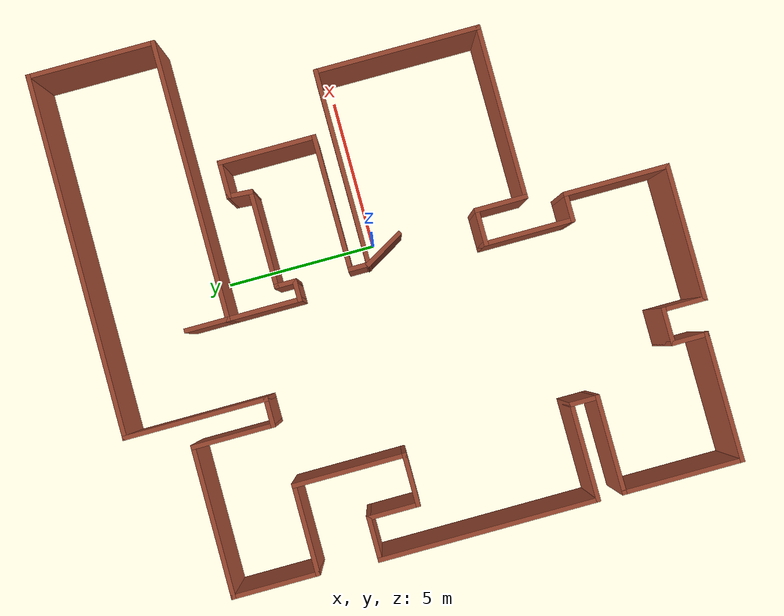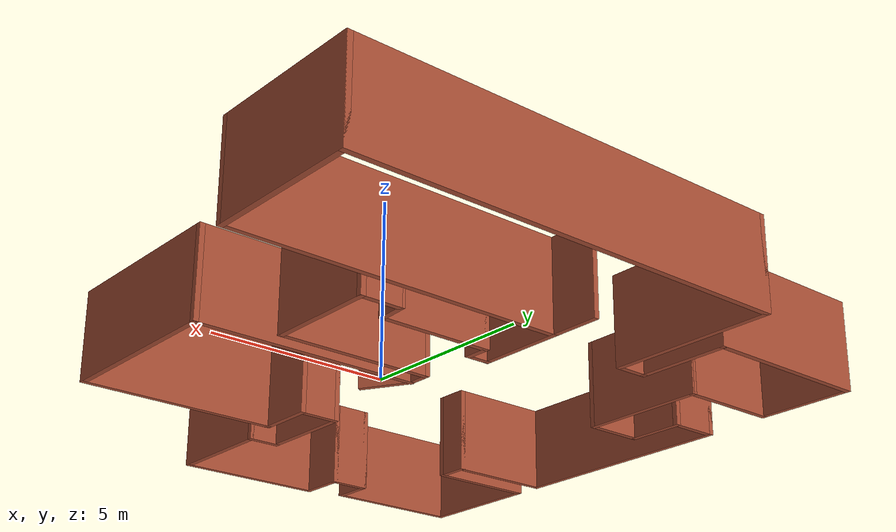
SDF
<?xml version='1.0'?>
<sdf version='1.6'>
  <model name='map_110'>
    <pose frame=''>-0.935278 -0.242442 0 0 -0 0</pose>
    <link name='Wall_22'>
      <collision name='Wall_22_Collision'>
        <geometry>
          <box>
            <size>2.8936 0.15 2.5</size>
          </box>
        </geometry>
        <pose frame=''>0 0 1.25 0 -0 0</pose>
      </collision>
      <visual name='Wall_22_Visual'>
        <pose frame=''>0 0 1.25 0 -0 0</pose>
        <geometry>
          <box>
            <size>2.8936 0.15 2.5</size>
          </box>
        </geometry>
        <material>
          <script>
            <uri>file://media/materials/scripts/gazebo.material</uri>
            <name>Gazebo/Bricks</name>
          </script>
          <ambient>1 1 1 1</ambient>
        </material>
        <meta>
          <layer>0</layer>
        </meta>
      </visual>
      <pose frame=''>-8.725 6.025 0 0 -0 -1.5708</pose>
    </link>
    <link name='Wall_23'>
      <collision name='Wall_23_Collision'>
        <geometry>
          <box>
            <size>3 0.15 2.5</size>
          </box>
        </geometry>
        <pose frame=''>0 0 1.25 0 -0 0</pose>
      </collision>
      <visual name='Wall_23_Visual'>
        <pose frame=''>0 0 1.25 0 -0 0</pose>
        <geometry>
          <box>
            <size>3 0.15 2.5</size>
          </box>
        </geometry>
        <material>
          <script>
            <uri>file://media/materials/scripts/gazebo.material</uri>
            <name>Gazebo/Bricks</name>
          </script>
          <ambient>1 1 1 1</ambient>
        </material>
        <meta>
          <layer>0</layer>
        </meta>
      </visual>
      <pose frame=''>-7.3 4.6532 0 0 -0 0</pose>
    </link>
    <link name='Wall_26'>
      <collision name='Wall_26_Collision'>
        <geometry>
          <box>
            <size>3.75 0.15 2.5</size>
          </box>
        </geometry>
        <pose frame=''>0 0 1.25 0 -0 0</pose>
      </collision>
      <visual name='Wall_26_Visual'>
        <pose frame=''>0 0 1.25 0 -0 0</pose>
        <geometry>
          <box>
            <size>3.75 0.15 2.5</size>
          </box>
        </geometry>
        <material>
          <script>
            <uri>file://media/materials/scripts/gazebo.material</uri>
            <name>Gazebo/Bricks</name>
          </script>
          <ambient>1 1 1 1</ambient>
        </material>
        <meta>
          <layer>0</layer>
        </meta>
      </visual>
      <pose frame=''>-5.875 2.8532 0 0 -0 -1.5708</pose>
    </link>
    <link name='Wall_27'>
      <collision name='Wall_27_Collision'>
        <geometry>
          <box>
            <size>1.75 0.15 2.5</size>
          </box>
        </geometry>
        <pose frame=''>0 0 1.25 0 -0 0</pose>
      </collision>
      <visual name='Wall_27_Visual'>
        <pose frame=''>0 0 1.25 0 -0 0</pose>
        <geometry>
          <box>
            <size>1.75 0.15 2.5</size>
          </box>
        </geometry>
        <material>
          <script>
            <uri>file://media/materials/scripts/gazebo.material</uri>
            <name>Gazebo/Bricks</name>
          </script>
          <ambient>1 1 1 1</ambient>
        </material>
        <meta>
          <layer>0</layer>
        </meta>
      </visual>
      <pose frame=''>-6.675 1.0532 0 0 -0 3.14159</pose>
    </link>
    <link name='Wall_28'>
      <collision name='Wall_28_Collision'>
        <geometry>
          <box>
            <size>1.75 0.15 2.5</size>
          </box>
        </geometry>
        <pose frame=''>0 0 1.25 0 -0 0</pose>
      </collision>
      <visual name='Wall_28_Visual'>
        <pose frame=''>0 0 1.25 0 -0 0</pose>
        <geometry>
          <box>
            <size>1.75 0.15 2.5</size>
          </box>
        </geometry>
        <material>
          <script>
            <uri>file://media/materials/scripts/gazebo.material</uri>
            <name>Gazebo/Bricks</name>
          </script>
          <ambient>1 1 1 1</ambient>
        </material>
        <meta>
          <layer>0</layer>
        </meta>
      </visual>
      <pose frame=''>-7.475 1.8532 0 0 -0 1.5708</pose>
    </link>
    <link name='Wall_29'>
      <collision name='Wall_29_Collision'>
        <geometry>
          <box>
            <size>1.5 0.15 2.5</size>
          </box>
        </geometry>
        <pose frame=''>0 0 1.25 0 -0 0</pose>
      </collision>
      <visual name='Wall_29_Visual'>
        <pose frame=''>0 0 1.25 0 -0 0</pose>
        <geometry>
          <box>
            <size>1.5 0.15 2.5</size>
          </box>
        </geometry>
        <material>
          <script>
            <uri>file://media/materials/scripts/gazebo.material</uri>
            <name>Gazebo/Bricks</name>
          </script>
          <ambient>1 1 1 1</ambient>
        </material>
        <meta>
          <layer>0</layer>
        </meta>
      </visual>
      <pose frame=''>-8.15 2.6532 0 0 -0 3.14159</pose>
    </link>
    <link name='Wall_31'>
      <collision name='Wall_31_Collision'>
        <geometry>
          <box>
            <size>7.25 0.15 2.5</size>
          </box>
        </geometry>
        <pose frame=''>0 0 1.25 0 -0 0</pose>
      </collision>
      <visual name='Wall_31_Visual'>
        <pose frame=''>0 0 1.25 0 -0 0</pose>
        <geometry>
          <box>
            <size>7.25 0.15 2.5</size>
          </box>
        </geometry>
        <material>
          <script>
            <uri>file://media/materials/scripts/gazebo.material</uri>
            <name>Gazebo/Bricks</name>
          </script>
          <ambient>1 1 1 1</ambient>
        </material>
        <meta>
          <layer>0</layer>
        </meta>
      </visual>
      <pose frame=''>-8.825 -0.8968 0 0 -0 -1.5708</pose>
    </link>
    <link name='Wall_32'>
      <collision name='Wall_32_Collision'>
        <geometry>
          <box>
            <size>3.25 0.15 2.5</size>
          </box>
        </geometry>
        <pose frame=''>0 0 1.25 0 -0 0</pose>
      </collision>
      <visual name='Wall_32_Visual'>
        <pose frame=''>0 0 1.25 0 -0 0</pose>
        <geometry>
          <box>
            <size>3.25 0.15 2.5</size>
          </box>
        </geometry>
        <material>
          <script>
            <uri>file://media/materials/scripts/gazebo.material</uri>
            <name>Gazebo/Bricks</name>
          </script>
          <ambient>1 1 1 1</ambient>
        </material>
        <meta>
          <layer>0</layer>
        </meta>
      </visual>
      <pose frame=''>-7.275 -4.4468 0 0 -0 0</pose>
    </link>
    <link name='Wall_33'>
      <collision name='Wall_33_Collision'>
        <geometry>
          <box>
            <size>1 0.15 2.5</size>
          </box>
        </geometry>
        <pose frame=''>0 0 1.25 0 -0 0</pose>
      </collision>
      <visual name='Wall_33_Visual'>
        <pose frame=''>0 0 1.25 0 -0 0</pose>
        <geometry>
          <box>
            <size>1 0.15 2.5</size>
          </box>
        </geometry>
        <material>
          <script>
            <uri>file://media/materials/scripts/gazebo.material</uri>
            <name>Gazebo/Bricks</name>
          </script>
          <ambient>1 1 1 1</ambient>
        </material>
        <meta>
          <layer>0</layer>
        </meta>
      </visual>
      <pose frame=''>-5.725 -4.8718 0 0 -0 -1.5708</pose>
    </link>
    <link name='Wall_34'>
      <collision name='Wall_34_Collision'>
        <geometry>
          <box>
            <size>3.25 0.15 2.5</size>
          </box>
        </geometry>
        <pose frame=''>0 0 1.25 0 -0 0</pose>
      </collision>
      <visual name='Wall_34_Visual'>
        <pose frame=''>0 0 1.25 0 -0 0</pose>
        <geometry>
          <box>
            <size>3.25 0.15 2.5</size>
          </box>
        </geometry>
        <material>
          <script>
            <uri>file://media/materials/scripts/gazebo.material</uri>
            <name>Gazebo/Bricks</name>
          </script>
          <ambient>1 1 1 1</ambient>
        </material>
        <meta>
          <layer>0</layer>
        </meta>
      </visual>
      <pose frame=''>-7.275 -5.2968 0 0 -0 3.14159</pose>
    </link>
    <link name='Wall_35'>
      <collision name='Wall_35_Collision'>
        <geometry>
          <box>
            <size>4 0.15 2.5</size>
          </box>
        </geometry>
        <pose frame=''>0 0 1.25 0 -0 0</pose>
      </collision>
      <visual name='Wall_35_Visual'>
        <pose frame=''>0 0 1.25 0 -0 0</pose>
        <geometry>
          <box>
            <size>4 0.15 2.5</size>
          </box>
        </geometry>
        <material>
          <script>
            <uri>file://media/materials/scripts/gazebo.material</uri>
            <name>Gazebo/Bricks</name>
          </script>
          <ambient>1 1 1 1</ambient>
        </material>
        <meta>
          <layer>0</layer>
        </meta>
      </visual>
      <pose frame=''>-8.825 -7.2218 0 0 -0 -1.5708</pose>
    </link>
    <link name='Wall_36'>
      <collision name='Wall_36_Collision'>
        <geometry>
          <box>
            <size>4.25 0.15 2.5</size>
          </box>
        </geometry>
        <pose frame=''>0 0 1.25 0 -0 0</pose>
      </collision>
      <visual name='Wall_36_Visual'>
        <pose frame=''>0 0 1.25 0 -0 0</pose>
        <geometry>
          <box>
            <size>4.25 0.15 2.5</size>
          </box>
        </geometry>
        <material>
          <script>
            <uri>file://media/materials/scripts/gazebo.material</uri>
            <name>Gazebo/Bricks</name>
          </script>
          <ambient>1 1 1 1</ambient>
        </material>
        <meta>
          <layer>0</layer>
        </meta>
      </visual>
      <pose frame=''>-6.775 -9.1468 0 0 -0 0</pose>
    </link>
    <link name='Wall_37'>
      <collision name='Wall_37_Collision'>
        <geometry>
          <box>
            <size>1.25 0.15 2.5</size>
          </box>
        </geometry>
        <pose frame=''>0 0 1.25 0 -0 0</pose>
      </collision>
      <visual name='Wall_37_Visual'>
        <pose frame=''>0 0 1.25 0 -0 0</pose>
        <geometry>
          <box>
            <size>1.25 0.15 2.5</size>
          </box>
        </geometry>
        <material>
          <script>
            <uri>file://media/materials/scripts/gazebo.material</uri>
            <name>Gazebo/Bricks</name>
          </script>
          <ambient>1 1 1 1</ambient>
        </material>
        <meta>
          <layer>0</layer>
        </meta>
      </visual>
      <pose frame=''>-4.725 -8.5968 0 0 -0 1.5708</pose>
    </link>
    <link name='Wall_38'>
      <collision name='Wall_38_Collision'>
        <geometry>
          <box>
            <size>1.25 0.15 2.5</size>
          </box>
        </geometry>
        <pose frame=''>0 0 1.25 0 -0 0</pose>
      </collision>
      <visual name='Wall_38_Visual'>
        <pose frame=''>0 0 1.25 0 -0 0</pose>
        <geometry>
          <box>
            <size>1.25 0.15 2.5</size>
          </box>
        </geometry>
        <material>
          <script>
            <uri>file://media/materials/scripts/gazebo.material</uri>
            <name>Gazebo/Bricks</name>
          </script>
          <ambient>1 1 1 1</ambient>
        </material>
        <meta>
          <layer>0</layer>
        </meta>
      </visual>
      <pose frame=''>-4.175 -8.0468 0 0 -0 0</pose>
    </link>
    <link name='Wall_39'>
      <collision name='Wall_39_Collision'>
        <geometry>
          <box>
            <size>1.5 0.15 2.5</size>
          </box>
        </geometry>
        <pose frame=''>0 0 1.25 0 -0 0</pose>
      </collision>
      <visual name='Wall_39_Visual'>
        <pose frame=''>0 0 1.25 0 -0 0</pose>
        <geometry>
          <box>
            <size>1.5 0.15 2.5</size>
          </box>
        </geometry>
        <material>
          <script>
            <uri>file://media/materials/scripts/gazebo.material</uri>
            <name>Gazebo/Bricks</name>
          </script>
          <ambient>1 1 1 1</ambient>
        </material>
        <meta>
          <layer>0</layer>
        </meta>
      </visual>
      <pose frame=''>-3.625 -8.7218 0 0 -0 -1.5708</pose>
    </link>
    <link name='Wall_40'>
      <collision name='Wall_40_Collision'>
        <geometry>
          <box>
            <size>4.5 0.15 2.5</size>
          </box>
        </geometry>
        <pose frame=''>0 0 1.25 0 -0 0</pose>
      </collision>
      <visual name='Wall_40_Visual'>
        <pose frame=''>0 0 1.25 0 -0 0</pose>
        <geometry>
          <box>
            <size>4.5 0.15 2.5</size>
          </box>
        </geometry>
        <material>
          <script>
            <uri>file://media/materials/scripts/gazebo.material</uri>
            <name>Gazebo/Bricks</name>
          </script>
          <ambient>1 1 1 1</ambient>
        </material>
        <meta>
          <layer>0</layer>
        </meta>
      </visual>
      <pose frame=''>-1.45 -9.3968 0 0 -0 0</pose>
    </link>
    <link name='Wall_54'>
      <collision name='Wall_54_Collision'>
        <geometry>
          <box>
            <size>3.5 0.15 2.5</size>
          </box>
        </geometry>
        <pose frame=''>0 0 1.25 0 -0 0</pose>
      </collision>
      <visual name='Wall_54_Visual'>
        <pose frame=''>0 0 1.25 0 -0 0</pose>
        <geometry>
          <box>
            <size>3.5 0.15 2.5</size>
          </box>
        </geometry>
        <material>
          <script>
            <uri>file://media/materials/scripts/gazebo.material</uri>
            <name>Gazebo/Bricks</name>
          </script>
          <ambient>1 1 1 1</ambient>
        </material>
        <meta>
          <layer>0</layer>
        </meta>
      </visual>
      <pose frame=''>0.725 -7.7218 0 0 -0 1.5708</pose>
    </link>
    <link name='Wall_55'>
      <collision name='Wall_55_Collision'>
        <geometry>
          <box>
            <size>1 0.15 2.5</size>
          </box>
        </geometry>
        <pose frame=''>0 0 1.25 0 -0 0</pose>
      </collision>
      <visual name='Wall_55_Visual'>
        <pose frame=''>0 0 1.25 0 -0 0</pose>
        <geometry>
          <box>
            <size>1 0.15 2.5</size>
          </box>
        </geometry>
        <material>
          <script>
            <uri>file://media/materials/scripts/gazebo.material</uri>
            <name>Gazebo/Bricks</name>
          </script>
          <ambient>1 1 1 1</ambient>
        </material>
        <meta>
          <layer>0</layer>
        </meta>
      </visual>
      <pose frame=''>0.3 -6.0468 0 0 -0 3.14159</pose>
    </link>
    <link name='Wall_56'>
      <collision name='Wall_56_Collision'>
        <geometry>
          <box>
            <size>3 0.15 2.5</size>
          </box>
        </geometry>
        <pose frame=''>0 0 1.25 0 -0 0</pose>
      </collision>
      <visual name='Wall_56_Visual'>
        <pose frame=''>0 0 1.25 0 -0 0</pose>
        <geometry>
          <box>
            <size>3 0.15 2.5</size>
          </box>
        </geometry>
        <material>
          <script>
            <uri>file://media/materials/scripts/gazebo.material</uri>
            <name>Gazebo/Bricks</name>
          </script>
          <ambient>1 1 1 1</ambient>
        </material>
        <meta>
          <layer>0</layer>
        </meta>
      </visual>
      <pose frame=''>-0.125 -4.6218 0 0 -0 1.5708</pose>
    </link>
    <link name='Wall_57'>
      <collision name='Wall_57_Collision'>
        <geometry>
          <box>
            <size>1.25 0.15 2.5</size>
          </box>
        </geometry>
        <pose frame=''>0 0 1.25 0 -0 0</pose>
      </collision>
      <visual name='Wall_57_Visual'>
        <pose frame=''>0 0 1.25 0 -0 0</pose>
        <geometry>
          <box>
            <size>1.25 0.15 2.5</size>
          </box>
        </geometry>
        <material>
          <script>
            <uri>file://media/materials/scripts/gazebo.material</uri>
            <name>Gazebo/Bricks</name>
          </script>
          <ambient>1 1 1 1</ambient>
        </material>
        <meta>
          <layer>0</layer>
        </meta>
      </visual>
      <pose frame=''>0.425 -3.1968 0 0 -0 0</pose>
    </link>
    <link name='Wall_58'>
      <collision name='Wall_58_Collision'>
        <geometry>
          <box>
            <size>1.75 0.15 2.5</size>
          </box>
        </geometry>
        <pose frame=''>0 0 1.25 0 -0 0</pose>
      </collision>
      <visual name='Wall_58_Visual'>
        <pose frame=''>0 0 1.25 0 -0 0</pose>
        <geometry>
          <box>
            <size>1.75 0.15 2.5</size>
          </box>
        </geometry>
        <material>
          <script>
            <uri>file://media/materials/scripts/gazebo.material</uri>
            <name>Gazebo/Bricks</name>
          </script>
          <ambient>1 1 1 1</ambient>
        </material>
        <meta>
          <layer>0</layer>
        </meta>
      </visual>
      <pose frame=''>0.975 -3.9968 0 0 -0 -1.5708</pose>
    </link>
    <link name='Wall_59'>
      <collision name='Wall_59_Collision'>
        <geometry>
          <box>
            <size>5.75 0.15 2.5</size>
          </box>
        </geometry>
        <pose frame=''>0 0 1.25 0 -0 0</pose>
      </collision>
      <visual name='Wall_59_Visual'>
        <pose frame=''>0 0 1.25 0 -0 0</pose>
        <geometry>
          <box>
            <size>5.75 0.15 2.5</size>
          </box>
        </geometry>
        <material>
          <script>
            <uri>file://media/materials/scripts/gazebo.material</uri>
            <name>Gazebo/Bricks</name>
          </script>
          <ambient>1 1 1 1</ambient>
        </material>
        <meta>
          <layer>0</layer>
        </meta>
      </visual>
      <pose frame=''>3.775 -4.7968 0 0 -0 0</pose>
    </link>
    <link name='Wall_60'>
      <collision name='Wall_60_Collision'>
        <geometry>
          <box>
            <size>5.5 0.15 2.5</size>
          </box>
        </geometry>
        <pose frame=''>0 0 1.25 0 -0 0</pose>
      </collision>
      <visual name='Wall_60_Visual'>
        <pose frame=''>0 0 1.25 0 -0 0</pose>
        <geometry>
          <box>
            <size>5.5 0.15 2.5</size>
          </box>
        </geometry>
        <material>
          <script>
            <uri>file://media/materials/scripts/gazebo.material</uri>
            <name>Gazebo/Bricks</name>
          </script>
          <ambient>1 1 1 1</ambient>
        </material>
        <meta>
          <layer>0</layer>
        </meta>
      </visual>
      <pose frame=''>6.575 -2.1218 0 0 -0 1.5708</pose>
    </link>
    <link name='Wall_61'>
      <collision name='Wall_61_Collision'>
        <geometry>
          <box>
            <size>6.5 0.15 2.5</size>
          </box>
        </geometry>
        <pose frame=''>0 0 1.25 0 -0 0</pose>
      </collision>
      <visual name='Wall_61_Visual'>
        <pose frame=''>0 0 1.25 0 -0 0</pose>
        <geometry>
          <box>
            <size>6.5 0.15 2.5</size>
          </box>
        </geometry>
        <material>
          <script>
            <uri>file://media/materials/scripts/gazebo.material</uri>
            <name>Gazebo/Bricks</name>
          </script>
          <ambient>1 1 1 1</ambient>
        </material>
        <meta>
          <layer>0</layer>
        </meta>
      </visual>
      <pose frame=''>3.4 0.5532 0 0 -0 3.14159</pose>
    </link>
    <link name='Wall_62'>
      <collision name='Wall_62_Collision'>
        <geometry>
          <box>
            <size>0.75 0.15 2.5</size>
          </box>
        </geometry>
        <pose frame=''>0 0 1.25 0 -0 0</pose>
      </collision>
      <visual name='Wall_62_Visual'>
        <pose frame=''>0 0 1.25 0 -0 0</pose>
        <geometry>
          <box>
            <size>0.75 0.15 2.5</size>
          </box>
        </geometry>
        <material>
          <script>
            <uri>file://media/materials/scripts/gazebo.material</uri>
            <name>Gazebo/Bricks</name>
          </script>
          <ambient>1 1 1 1</ambient>
        </material>
        <meta>
          <layer>0</layer>
        </meta>
      </visual>
      <pose frame=''>0.225 0.8532 0 0 -0 1.5708</pose>
    </link>
    <link name='Wall_63'>
      <collision name='Wall_63_Collision'>
        <geometry>
          <box>
            <size>4.5 0.15 2.5</size>
          </box>
        </geometry>
        <pose frame=''>0 0 1.25 0 -0 0</pose>
      </collision>
      <visual name='Wall_63_Visual'>
        <pose frame=''>0 0 1.25 0 -0 0</pose>
        <geometry>
          <box>
            <size>4.5 0.15 2.5</size>
          </box>
        </geometry>
        <material>
          <script>
            <uri>file://media/materials/scripts/gazebo.material</uri>
            <name>Gazebo/Bricks</name>
          </script>
          <ambient>1 1 1 1</ambient>
        </material>
        <meta>
          <layer>0</layer>
        </meta>
      </visual>
      <pose frame=''>2.4 1.1532 0 0 -0 0</pose>
    </link>
    <link name='Wall_64'>
      <collision name='Wall_64_Collision'>
        <geometry>
          <box>
            <size>3.25 0.15 2.5</size>
          </box>
        </geometry>
        <pose frame=''>0 0 1.25 0 -0 0</pose>
      </collision>
      <visual name='Wall_64_Visual'>
        <pose frame=''>0 0 1.25 0 -0 0</pose>
        <geometry>
          <box>
            <size>3.25 0.15 2.5</size>
          </box>
        </geometry>
        <material>
          <script>
            <uri>file://media/materials/scripts/gazebo.material</uri>
            <name>Gazebo/Bricks</name>
          </script>
          <ambient>1 1 1 1</ambient>
        </material>
        <meta>
          <layer>0</layer>
        </meta>
      </visual>
      <pose frame=''>4.575 2.7032 0 0 -0 1.5708</pose>
    </link>
    <link name='Wall_65'>
      <collision name='Wall_65_Collision'>
        <geometry>
          <box>
            <size>1.25 0.15 2.5</size>
          </box>
        </geometry>
        <pose frame=''>0 0 1.25 0 -0 0</pose>
      </collision>
      <visual name='Wall_65_Visual'>
        <pose frame=''>0 0 1.25 0 -0 0</pose>
        <geometry>
          <box>
            <size>1.25 0.15 2.5</size>
          </box>
        </geometry>
        <material>
          <script>
            <uri>file://media/materials/scripts/gazebo.material</uri>
            <name>Gazebo/Bricks</name>
          </script>
          <ambient>1 1 1 1</ambient>
        </material>
        <meta>
          <layer>0</layer>
        </meta>
      </visual>
      <pose frame=''>4.025 4.2532 0 0 -0 3.14159</pose>
    </link>
    <link name='Wall_70'>
      <collision name='Wall_70_Collision'>
        <geometry>
          <box>
            <size>5 0.15 2.5</size>
          </box>
        </geometry>
        <pose frame=''>0 0 1.25 0 -0 0</pose>
      </collision>
      <visual name='Wall_70_Visual'>
        <pose frame=''>0 0 1.25 0 -0 0</pose>
        <geometry>
          <box>
            <size>5 0.15 2.5</size>
          </box>
        </geometry>
        <material>
          <script>
            <uri>file://media/materials/scripts/gazebo.material</uri>
            <name>Gazebo/Bricks</name>
          </script>
          <ambient>1 1 1 1</ambient>
        </material>
        <meta>
          <layer>0</layer>
        </meta>
      </visual>
      <pose frame=''>-6.3 7.3968 0 0 -0 0</pose>
    </link>
    <link name='Wall_71'>
      <collision name='Wall_71_Collision'>
        <geometry>
          <box>
            <size>2.75 0.15 2.5</size>
          </box>
        </geometry>
        <pose frame=''>0 0 1.25 0 -0 0</pose>
      </collision>
      <visual name='Wall_71_Visual'>
        <pose frame=''>0 0 1.25 0 -0 0</pose>
        <geometry>
          <box>
            <size>2.75 0.15 2.5</size>
          </box>
        </geometry>
        <material>
          <script>
            <uri>file://media/materials/scripts/gazebo.material</uri>
            <name>Gazebo/Bricks</name>
          </script>
          <ambient>1 1 1 1</ambient>
        </material>
        <meta>
          <layer>0</layer>
        </meta>
      </visual>
      <pose frame=''>-3.875 6.0968 0 0 -0 -1.5708</pose>
    </link>
    <link name='Wall_72'>
      <collision name='Wall_72_Collision'>
        <geometry>
          <box>
            <size>1 0.15 2.5</size>
          </box>
        </geometry>
        <pose frame=''>0 0 1.25 0 -0 0</pose>
      </collision>
      <visual name='Wall_72_Visual'>
        <pose frame=''>0 0 1.25 0 -0 0</pose>
        <geometry>
          <box>
            <size>1 0.15 2.5</size>
          </box>
        </geometry>
        <material>
          <script>
            <uri>file://media/materials/scripts/gazebo.material</uri>
            <name>Gazebo/Bricks</name>
          </script>
          <ambient>1 1 1 1</ambient>
        </material>
        <meta>
          <layer>0</layer>
        </meta>
      </visual>
      <pose frame=''>-3.45 4.7968 0 0 -0 0</pose>
    </link>
    <link name='Wall_73'>
      <collision name='Wall_73_Collision'>
        <geometry>
          <box>
            <size>4.75 0.15 2.5</size>
          </box>
        </geometry>
        <pose frame=''>0 0 1.25 0 -0 0</pose>
      </collision>
      <visual name='Wall_73_Visual'>
        <pose frame=''>0 0 1.25 0 -0 0</pose>
        <geometry>
          <box>
            <size>4.75 0.15 2.5</size>
          </box>
        </geometry>
        <material>
          <script>
            <uri>file://media/materials/scripts/gazebo.material</uri>
            <name>Gazebo/Bricks</name>
          </script>
          <ambient>1 1 1 1</ambient>
        </material>
        <meta>
          <layer>0</layer>
        </meta>
      </visual>
      <pose frame=''>-3.025 7.0968 0 0 -0 1.5708</pose>
    </link>
    <link name='Wall_74'>
      <collision name='Wall_74_Collision'>
        <geometry>
          <box>
            <size>12 0.15 2.5</size>
          </box>
        </geometry>
        <pose frame=''>0 0 1.25 0 -0 0</pose>
      </collision>
      <visual name='Wall_74_Visual'>
        <pose frame=''>0 0 1.25 0 -0 0</pose>
        <geometry>
          <box>
            <size>12 0.15 2.5</size>
          </box>
        </geometry>
        <material>
          <script>
            <uri>file://media/materials/scripts/gazebo.material</uri>
            <name>Gazebo/Bricks</name>
          </script>
          <ambient>1 1 1 1</ambient>
        </material>
        <meta>
          <layer>0</layer>
        </meta>
      </visual>
      <pose frame=''>2.9 9.3968 0 0 -0 0</pose>
    </link>
    <link name='Wall_75'>
      <collision name='Wall_75_Collision'>
        <geometry>
          <box>
            <size>4.25 0.15 2.5</size>
          </box>
        </geometry>
        <pose frame=''>0 0 1.25 0 -0 0</pose>
      </collision>
      <visual name='Wall_75_Visual'>
        <pose frame=''>0 0 1.25 0 -0 0</pose>
        <geometry>
          <box>
            <size>4.25 0.15 2.5</size>
          </box>
        </geometry>
        <material>
          <script>
            <uri>file://media/materials/scripts/gazebo.material</uri>
            <name>Gazebo/Bricks</name>
          </script>
          <ambient>1 1 1 1</ambient>
        </material>
        <meta>
          <layer>0</layer>
        </meta>
      </visual>
      <pose frame=''>8.825 7.3468 0 0 -0 -1.5708</pose>
    </link>
    <link name='Wall_76'>
      <collision name='Wall_76_Collision'>
        <geometry>
          <box>
            <size>9.25 0.15 2.5</size>
          </box>
        </geometry>
        <pose frame=''>0 0 1.25 0 -0 0</pose>
      </collision>
      <visual name='Wall_76_Visual'>
        <pose frame=''>0 0 1.25 0 -0 0</pose>
        <geometry>
          <box>
            <size>9.25 0.15 2.5</size>
          </box>
        </geometry>
        <material>
          <script>
            <uri>file://media/materials/scripts/gazebo.material</uri>
            <name>Gazebo/Bricks</name>
          </script>
          <ambient>1 1 1 1</ambient>
        </material>
        <meta>
          <layer>0</layer>
        </meta>
      </visual>
      <pose frame=''>4.275 5.2968 0 0 -0 3.14159</pose>
    </link>
    <link name='Wall_77'>
      <collision name='Wall_77_Collision'>
        <geometry>
          <box>
            <size>1.5 0.15 2.5</size>
          </box>
        </geometry>
        <pose frame=''>0 0 1.25 0 -0 0</pose>
      </collision>
      <visual name='Wall_77_Visual'>
        <pose frame=''>0 0 1.25 0 -0 0</pose>
        <geometry>
          <box>
            <size>1.5 0.15 2.5</size>
          </box>
        </geometry>
        <material>
          <script>
            <uri>file://media/materials/scripts/gazebo.material</uri>
            <name>Gazebo/Bricks</name>
          </script>
          <ambient>1 1 1 1</ambient>
        </material>
        <meta>
          <layer>0</layer>
        </meta>
      </visual>
      <pose frame=''>-0.275 5.9718 0 0 -0 1.5708</pose>
    </link>
    <link name='Wall_79'>
      <collision name='Wall_79_Collision'>
        <geometry>
          <box>
            <size>2.5 0.15 2.5</size>
          </box>
        </geometry>
        <pose frame=''>0 0 1.25 0 -0 0</pose>
      </collision>
      <visual name='Wall_79_Visual'>
        <pose frame=''>0 0 1.25 0 -0 0</pose>
        <geometry>
          <box>
            <size>2.5 0.15 2.5</size>
          </box>
        </geometry>
        <material>
          <script>
            <uri>file://media/materials/scripts/gazebo.material</uri>
            <name>Gazebo/Bricks</name>
          </script>
          <ambient>1 1 1 1</ambient>
        </material>
        <meta>
          <layer>0</layer>
        </meta>
      </visual>
      <pose frame=''>-0.275 4.1218 0 0 -0 -1.5708</pose>
    </link>
    <link name='Wall_81'>
      <collision name='Wall_81_Collision'>
        <geometry>
          <box>
            <size>0.75 0.15 2.5</size>
          </box>
        </geometry>
        <pose frame=''>0 0 1.25 0 -0 0</pose>
      </collision>
      <visual name='Wall_81_Visual'>
        <pose frame=''>0 0 1.25 0 -0 0</pose>
        <geometry>
          <box>
            <size>0.75 0.15 2.5</size>
          </box>
        </geometry>
        <material>
          <script>
            <uri>file://media/materials/scripts/gazebo.material</uri>
            <name>Gazebo/Bricks</name>
          </script>
          <ambient>1 1 1 1</ambient>
        </material>
        <meta>
          <layer>0</layer>
        </meta>
      </visual>
      <pose frame=''>0.025 2.9468 0 0 -0 0</pose>
    </link>
    <link name='Wall_82'>
      <collision name='Wall_82_Collision'>
        <geometry>
          <box>
            <size>0.75 0.15 2.5</size>
          </box>
        </geometry>
        <pose frame=''>0 0 1.25 0 -0 0</pose>
      </collision>
      <visual name='Wall_82_Visual'>
        <pose frame=''>0 0 1.25 0 -0 0</pose>
        <geometry>
          <box>
            <size>0.75 0.15 2.5</size>
          </box>
        </geometry>
        <material>
          <script>
            <uri>file://media/materials/scripts/gazebo.material</uri>
            <name>Gazebo/Bricks</name>
          </script>
          <ambient>1 1 1 1</ambient>
        </material>
        <meta>
          <layer>0</layer>
        </meta>
      </visual>
      <pose frame=''>0.325 3.2468 0 0 -0 1.5708</pose>
    </link>
    <link name='Wall_83'>
      <collision name='Wall_83_Collision'>
        <geometry>
          <box>
            <size>3.25 0.15 2.5</size>
          </box>
        </geometry>
        <pose frame=''>0 0 1.25 0 -0 0</pose>
      </collision>
      <visual name='Wall_83_Visual'>
        <pose frame=''>0 0 1.25 0 -0 0</pose>
        <geometry>
          <box>
            <size>3.25 0.15 2.5</size>
          </box>
        </geometry>
        <material>
          <script>
            <uri>file://media/materials/scripts/gazebo.material</uri>
            <name>Gazebo/Bricks</name>
          </script>
          <ambient>1 1 1 1</ambient>
        </material>
        <meta>
          <layer>0</layer>
        </meta>
      </visual>
      <pose frame=''>1.875 3.5468 0 0 -0 0</pose>
    </link>
    <link name='Wall_85'>
      <collision name='Wall_85_Collision'>
        <geometry>
          <box>
            <size>0.858168 0.15 2.5</size>
          </box>
        </geometry>
        <pose frame=''>0 0 1.25 0 -0 0</pose>
      </collision>
      <visual name='Wall_85_Visual'>
        <pose frame=''>0 0 1.25 0 -0 0</pose>
        <geometry>
          <box>
            <size>0.858168 0.15 2.5</size>
          </box>
        </geometry>
        <material>
          <script>
            <uri>file://media/materials/scripts/gazebo.material</uri>
            <name>Gazebo/Bricks</name>
          </script>
          <ambient>1 1 1 1</ambient>
        </material>
        <meta>
          <layer>0</layer>
        </meta>
      </visual>
      <pose frame=''>3.45 3.9 0 0 -0 -1.64146</pose>
    </link>
    <link name='Wall_89'>
      <collision name='Wall_89_Collision'>
        <geometry>
          <box>
            <size>1.5 0.15 2.5</size>
          </box>
        </geometry>
        <pose frame=''>0 0 1.25 0 -0 0</pose>
      </collision>
      <visual name='Wall_89_Visual'>
        <pose frame=''>0 0 1.25 0 -0 0</pose>
        <geometry>
          <box>
            <size>1.5 0.15 2.5</size>
          </box>
        </geometry>
        <material>
          <script>
            <uri>file://media/materials/scripts/gazebo.material</uri>
            <name>Gazebo/Bricks</name>
          </script>
          <ambient>1 1 1 1</ambient>
        </material>
        <meta>
          <layer>0</layer>
        </meta>
      </visual>
      <pose frame=''>0.5625 -0.031367 0 0 -0 -1.0472</pose>
    </link>
    <static>1</static>
  </model>
</sdf>
